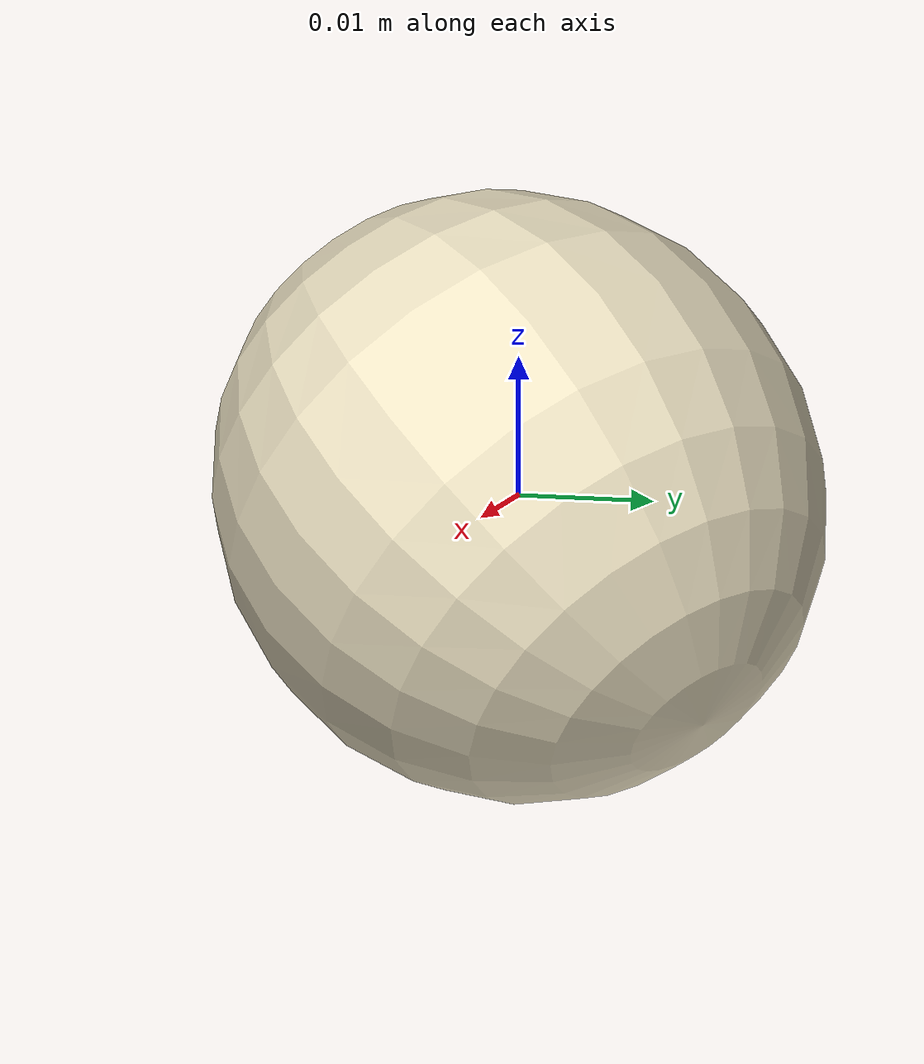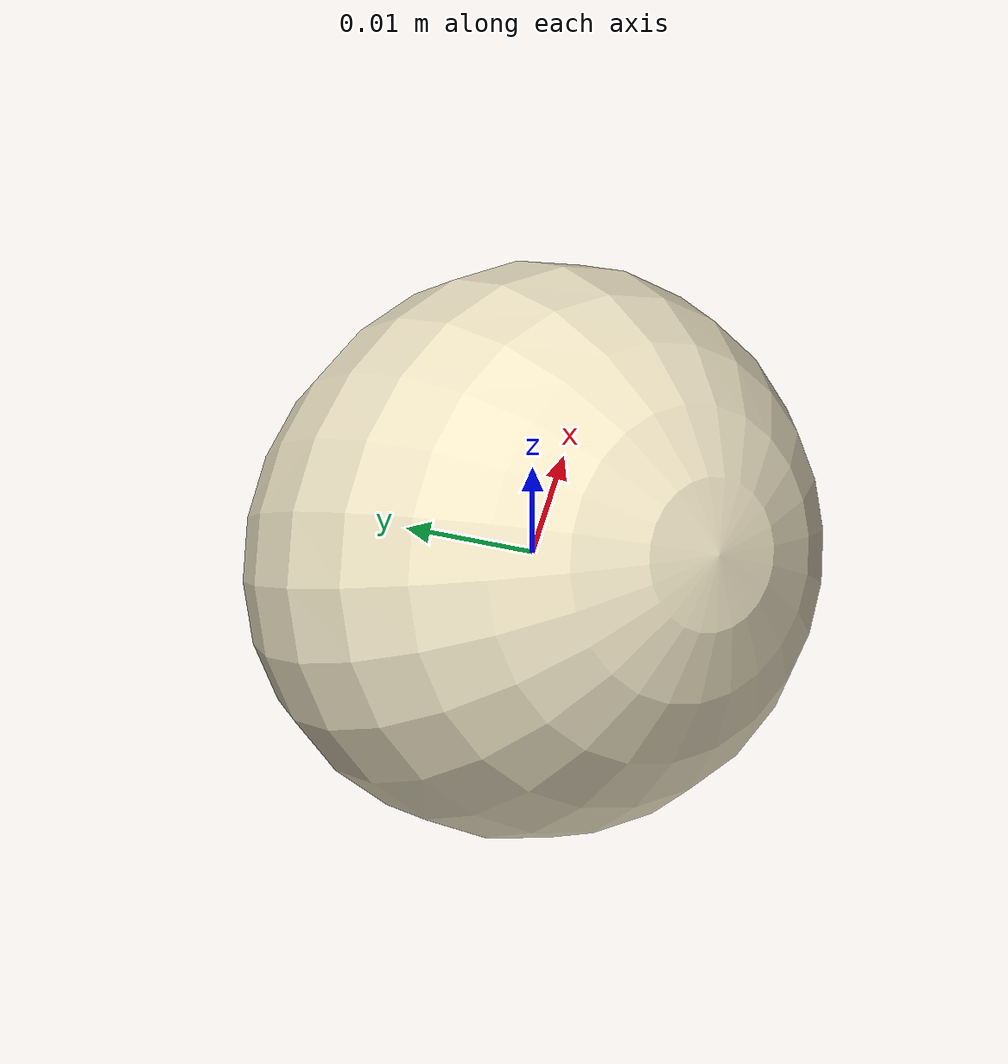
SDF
<?xml version="1.0"?>
<sdf version="1.7">
  <model name="cotton_pick_A_14">
    <static>false</static>
    <allow_auto_disable>false</allow_auto_disable>
    <link name="cotton_pick_A_14_link">
      <gravity>false</gravity>
      <self_collide>false</self_collide>
      <inertial>
        <mass>0.01200</mass>
        <inertia>
          <ixx>0.00000177</ixx>
          <iyy>0.00000177</iyy>
          <izz>0.00000177</izz>
          <ixy>0</ixy>
          <ixz>0</ixz>
          <iyz>0</iyz>
        </inertia>
      </inertial>
      <visual name="cotton_pick_A_14_visual">
        <geometry>
          <mesh>
            <uri>model://cotton_pick_A_14/meshes/cotton_pick_A_14.dae</uri>
          </mesh>
        </geometry>
      </visual>
      <collision name="cotton_pick_A_14_sphere_collision">
        <geometry>
          <sphere>
            <radius>0.01918</radius>
          </sphere>
        </geometry>
        <surface>
          <friction>
            <ode>
              <mu>1.6</mu>
              <mu2>1.6</mu2>
            </ode>
          </friction>
          <contact>
            <ode>
              <kp>8000</kp>
              <kd>80</kd>
            </ode>
          </contact>
        </surface>
      </collision>
    </link>
  </model>
</sdf>
